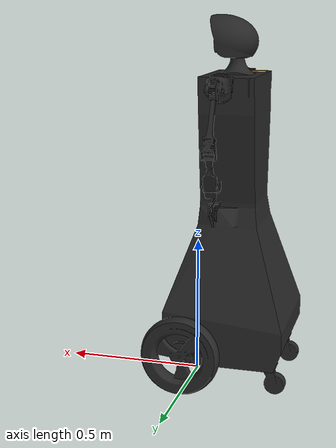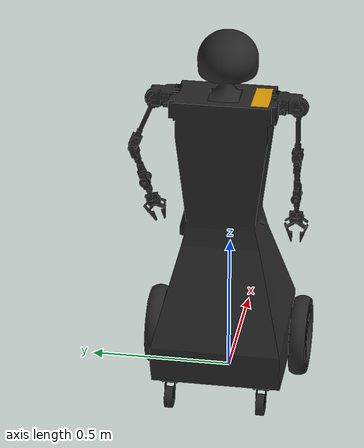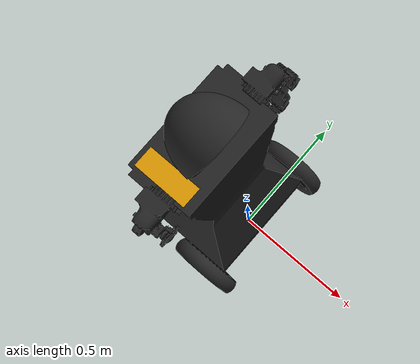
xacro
<?xml version="1.0" ?>
<robot name="roomac" xmlns:xacro="http://www.ros.org/wiki/xacro">

<xacro:arg name="simulation" default="false"/>

<xacro:include filename="$(find roomac_description)/urdf/roomac.trans"/>
<xacro:include filename="$(find roomac_description)/urdf/roomac.gazebo"/>

<material name="black">
  <color rgba="0.15 0.15 0.15 1.0"/>
</material>

<!-- BODY -->

<link name="base_link"/>
<link name="base_footprint"/>

<!-- Additional link needed to solve moveit warning (as far as I know it shouldn't cause any issue as I'm not using KDL, but still better to solve it): -->
<!-- The root link base_link has an inertia specified in the URDF, but KDL does not support a root link with an inertia.  As a workaround, you can add an extra dummy link to your URDF. -->
<link name="robot_body_link">
  <inertial>
    <origin xyz="-0.13821660856078213 0.0043835143674895525 0.42578889973861744" rpy="0 0 0"/>
    <mass value="12.267858710704742"/>
    <inertia ixx="0.720301" iyy="0.677932" izz="0.200987" ixy="4.5e-05" iyz="-0.003874" ixz="0.025748"/>
  </inertial>
  <visual>
    <origin xyz="0 0 0" rpy="0 0 0"/>
    <geometry>
      <mesh filename="package://roomac_description/meshes/robot_body.dae" scale="0.001 0.001 0.001"/>
    </geometry>
    <material name="black"/>
  </visual>
  <collision>
    <origin xyz="0 0 0" rpy="0 0 0"/>
    <geometry>
      <mesh filename="package://roomac_description/meshes/robot_body_collision.stl" scale="0.001 0.00105 0.001"/>
    </geometry>
  </collision>
</link>

<link name="head_link">
  <inertial>
    <origin xyz="-0.057525587412925475 -6.228687900878637e-07 0.06845033639955778" rpy="0 0 0"/>
    <mass value="4.300223439076428"/>
    <inertia ixx="0.025424" iyy="0.022772" izz="0.013755" ixy="0.0" iyz="-0.0" ixz="-0.001476"/>
  </inertial>
  <visual>
    <origin xyz="0.08 -2.1e-05 -0.969145" rpy="0 0 0"/>
    <geometry>
      <mesh filename="package://roomac_description/meshes/head.dae" scale="0.001 0.001 0.001"/>
    </geometry>
    <material name="black"/>
  </visual>
  <collision>
    <origin xyz="0.08 -2.1e-05 -0.969145" rpy="0 0 0"/>
    <geometry>
      <mesh filename="package://roomac_description/meshes/head_collision.stl" scale="0.001 0.001 0.001"/>
    </geometry>
  </collision>
</link>

<joint name="base_joint" type="fixed">
  <origin rpy="0 0 0" xyz="0 0 0.145"/>
  <parent link="base_footprint"/>
  <child link="base_link"/>
</joint>

<joint name="robot_body_joint" type="fixed">
  <parent link="base_link"/>
  <child link="robot_body_link"/>
</joint>

<joint name="head_joint" type="fixed">
  <origin xyz="-0.08 2.1e-05 0.969145" rpy="0 0 0"/>
  <parent link="base_link"/>
  <child link="head_link"/>
</joint>

<!-- KINECT -->

<link name="camera_link"/>
<joint name="kinect_joint" type="fixed">
  <!-- 0.045 comes from calibration - ground was slightly tilted and I calibrated it in rviz to be parallel  -->
  <origin rpy="0 ${(31.513/180.)*pi - 0.045} 0" xyz="-0.108561 0.039543 0.467024"/>
  <parent link="base_link"/>
  <child link="camera_link"/>
</joint>

<!-- IMU -->

<link name="imu_link"/>
<joint name="imu_joint" type="fixed">
  <origin rpy="0 0 0" xyz="-0.09873 -0.0375 0.0305"/>
  <parent link="base_link"/>
  <child link="imu_link"/>
</joint>

<!-- ARTAG -->

<link name="artag_link"/>

<link name="artag_bundle_visual_link">
  <visual>
    <origin rpy="0 0 0" xyz="0 0 0"/>
    <geometry>
      <mesh filename="package://roomac_description/meshes/artag_bundle.dae" scale="1 1 1"/>
    </geometry>
  </visual>
</link>

<link name="artag_bundle_link"/>

<joint name="artag_joint" type="fixed">
  <origin rpy="0 0 0" xyz="-0.149 -0.125 0.972"/>
  <parent link="base_link"/>
  <child link="artag_link"/>
</joint>

<joint name="artag_bundle_visual_joint" type="fixed">
  <origin rpy="0 0 0" xyz="0.01 0.0 0.0"/>
  <parent link="artag_link"/>
  <child link="artag_bundle_visual_link"/>
</joint>

<xacro:if value="$(arg simulation)">
  <xacro:property name="artag_bundle_rpy" value="${-pi/2} 0 ${-pi/2}"/>
  <xacro:property name="artag_bundle_xyz" value="0.04857 0 0"/>
  <xacro:property name="artag_bundle_parent_link" value="artag_bundle_visual_link" />
</xacro:if>
<xacro:unless value="$(arg simulation)">
  <xacro:property name="artag_bundle_rpy" value="0 0 ${pi/2}"/>
  <xacro:property name="artag_bundle_xyz" value="0.0595 -0.004 0"/>
  <xacro:property name="artag_bundle_parent_link" value="artag_link" />
</xacro:unless>

<joint name="artag_bundle_joint" type="fixed">
    <origin rpy="${artag_bundle_rpy}" xyz="${artag_bundle_xyz}"/>
    <parent link="${artag_bundle_parent_link}"/>
    <child link="artag_bundle_link"/>
</joint>

<!-- CASTERS -->

<xacro:property name="caster_wheel_width" value="0.034"/>
<xacro:property name="caster_wheel_radius" value="0.0375"/>

<link name="caster_right_link">
  <inertial>
    <origin xyz="0.00355868425330208 -0.0279262663780577 -0.08858638249680677" rpy="0 0 0"/>
    <mass value="1.0173955553418546"/>
    <inertia ixx="0.000972" iyy="0.001208" izz="0.000477" ixy="-2e-06" iyz="-5e-06" ixz="-0.000233"/>
  </inertial>
  <visual>
    <origin xyz="0.324 -0.187 0.00465" rpy="0 0 0"/>
    <geometry>
      <mesh filename="package://roomac_description/meshes/caster.dae" scale="0.001 0.001 0.001"/>
    </geometry>
    <material name="black"/>
  </visual>
  <collision>
    <origin xyz="-0.001 -0.026 -0.10035" rpy="${pi/2.} 0 0"/>
    <geometry>
      <cylinder length="${caster_wheel_width}" radius="${caster_wheel_radius}"/>
    </geometry>
  </collision>
</link>

<link name="caster_left_link">
  <inertial>
    <origin xyz="0.0035586842533020246 0.02192626637805642 -0.0885863824968092" rpy="0 0 0"/>
    <mass value="1.0173955553418546"/>
    <inertia ixx="0.000972" iyy="0.001208" izz="0.000477" ixy="2e-06" iyz="5e-06" ixz="-0.000233"/>
  </inertial>
  <visual>
    <origin xyz="0.324 -0.139 0.00465" rpy="0 0 0"/>
    <geometry>
      <mesh filename="package://roomac_description/meshes/caster.dae" scale="0.001 0.001 0.001"/>
    </geometry>
    <material name="black"/>
  </visual>
  <collision>
    <origin xyz="-0.001 0.022 -0.10035" rpy="${pi/2.} 0 0"/>
    <geometry>
      <cylinder length="${caster_wheel_width}" radius="${caster_wheel_radius}"/>
    </geometry>
  </collision>
</link>

<joint name="caster_right_joint" type="fixed">
  <origin xyz="-0.324 -0.133 -0.00465" rpy="0 0 0"/>
  <parent link="base_link"/>
  <child link="caster_right_link"/>
</joint>

<joint name="caster_left_joint" type="fixed">
  <origin xyz="-0.324 0.139 -0.00465" rpy="0 0 0"/>
  <parent link="base_link"/>
  <child link="caster_left_link"/>
</joint>

<!-- WHEELS -->

<xacro:property name="wheel_width" value="0.062"/>
<xacro:property name="wheel_radius" value="0.145"/>
<xacro:property name="wheel_body_separation" value="0.01536"/>

<link name="wheel_right_link">
  <inertial>
    <origin xyz="-8.535155939829862e-08 -0.045545810193822645 1.2324269625501287e-07" rpy="0 0 0"/>
    <mass value="2.752514069802561"/>
    <inertia ixx="0.01649" iyy="0.031597" izz="0.01649" ixy="0.0" iyz="-0.0" ixz="0.0"/>
  </inertial>
  <visual>
    <origin xyz="-0.0 0.21064 0.0" rpy="${pi} 0 0"/>
    <geometry>
      <mesh filename="package://roomac_description/meshes/wheel.dae" scale="0.001 0.001 0.001"/>
    </geometry>
    <material name="black"/>
  </visual>
  <collision>
    <origin xyz="0 ${-wheel_width/2. - wheel_body_separation} 0" rpy="${pi/2.} 0 0"/>
    <geometry>
      <cylinder length="${wheel_width}" radius="${wheel_radius}"/>
    </geometry>
  </collision>
</link>

<link name="wheel_left_link">
  <inertial>
    <origin xyz="-7.854137935392783e-08 0.039545809782175645 1.1633993854093376e-07" rpy="0 0 0"/>
    <mass value="2.7525139105402956"/>
    <inertia ixx="0.01649" iyy="0.031597" izz="0.01649" ixy="-0.0" iyz="0.0" ixz="0.0"/>
  </inertial>
  <visual>
    <origin xyz="0.0 -0.21064 0.0" rpy="0 0 0"/>
    <geometry>
      <mesh filename="package://roomac_description/meshes/wheel.dae" scale="0.001 0.001 0.001"/>
    </geometry>
    <material name="black"/>
  </visual>
  <collision>
    <origin xyz="0 ${wheel_width/2. + wheel_body_separation} 0" rpy="${pi/2.} 0 0"/>
    <geometry>
      <cylinder length="${wheel_width}" radius="${wheel_radius}"/>
    </geometry>
  </collision>
</link>

<joint name="wheel_right_joint" type="continuous">
  <origin xyz="0.0 -0.21064 0.0" rpy="0 0 0"/>
  <parent link="base_link"/>
  <child link="wheel_right_link"/>
  <axis xyz="0 1 0"/>
</joint>

<joint name="wheel_left_joint" type="continuous">
  <origin xyz="0.0 0.21064 0.0" rpy="0 0 0"/>
  <parent link="base_link"/>
  <child link="wheel_left_link"/>
  <axis xyz="0 1 0"/>
</joint>

<!-- RIGHT ARM -->

<link name="shoulder_right_link">
  <inertial>
    <origin xyz="-0.00456057320555428 -0.012787272244286635 0.0077144845604640855" rpy="0 0 0"/>
    <mass value="2.3807768899181916"/>
    <inertia ixx="0.00282" iyy="0.002455" izz="0.003055" ixy="-0.000114" iyz="0.000293" ixz="7.6e-05"/>
  </inertial>
  <visual>
    <origin xyz="0.1135 0.174979 -0.9345" rpy="0 0 0"/>
    <geometry>
      <mesh filename="package://roomac_description/meshes/shoulder_right.dae" scale="0.001 0.001 0.001"/>
    </geometry>
    <material name="black"/>
  </visual>
  <collision>
    <origin xyz="0.1135 0.174979 -0.9345" rpy="0 0 0"/>
    <geometry>
      <mesh filename="package://roomac_description/meshes/shoulder_right_collision.stl" scale="0.001 0.001 0.001"/>
    </geometry>
  </collision>
</link>

<link name="shoulder_elbow_right_link">
  <inertial>
    <origin xyz="-1.8144588477334023e-05 1.4016989058340812e-07 -0.08491558495824947" rpy="0 0 0"/>
    <mass value="1.0007451414955084"/>
    <inertia ixx="0.008299" iyy="0.0082" izz="0.000235" ixy="-0.0" iyz="0.0" ixz="3e-06"/>
  </inertial>
  <visual>
    <origin xyz="0.113 0.243979 -0.9345" rpy="0 0 0"/>
    <geometry>
      <mesh filename="package://roomac_description/meshes/shoulder_elbow_right.dae" scale="0.001 0.001 0.001"/>
    </geometry>
    <material name="black"/>
  </visual>
  <collision>
    <origin xyz="0.113 0.243979 -0.9345" rpy="0 0 0"/>
    <geometry>
      <mesh filename="package://roomac_description/meshes/shoulder_elbow_right_collision.stl" scale="0.001 0.001 0.001"/>
    </geometry>
  </collision>
</link>

<link name="elbow_wrist_right_link">
  <inertial>
    <origin xyz="-0.019371175261057735 -0.001202599027629786 -0.0924289033208664" rpy="0 0 0"/>
    <mass value="0.6102002908923237"/>
    <inertia ixx="0.00103" iyy="0.001092" izz="0.000114" ixy="0.0" iyz="-1.8e-05" ixz="-1e-05"/>
  </inertial>
  <visual>
    <origin xyz="0.0925 0.243979 -0.733425" rpy="0 0 0"/>
    <geometry>
      <mesh filename="package://roomac_description/meshes/elbow_wrist_right.dae" scale="0.001 0.001 0.001"/>
    </geometry>
    <material name="black"/>
  </visual>
  <collision>
    <origin xyz="0.0925 0.243979 -0.733425" rpy="0 0 0"/>
    <geometry>
      <mesh filename="package://roomac_description/meshes/elbow_wrist_right_collision.stl" scale="0.001 0.001 0.001"/>
    </geometry>
  </collision>
</link>

<link name="wrist_right_link">
  <inertial>
    <origin xyz="0.02427263159088841 -0.0008946909470901598 -0.023520404043236964" rpy="0 0 0"/>
    <mass value="0.15933052176631626"/>
    <inertia ixx="6.4e-05" iyy="0.000118" izz="6.6e-05" ixy="0.0" iyz="-2e-06" ixz="1.5e-05"/>
  </inertial>
  <visual>
    <origin xyz="0.139354 0.243979 -0.603583" rpy="0 0 0"/>
    <geometry>
      <mesh filename="package://roomac_description/meshes/wrist_right.dae" scale="0.001 0.001 0.001"/>
    </geometry>
    <material name="black"/>
  </visual>
  <collision>
    <origin xyz="0.139354 0.243979 -0.603583" rpy="0 0 0"/>
    <geometry>
      <mesh filename="package://roomac_description/meshes/wrist_right_collision.stl" scale="0.001 0.001 0.001"/>
    </geometry>
  </collision>
</link>

<link name="gripper_right_link">
  <inertial>
    <origin xyz="-0.00024163561260406863 0.0010341725235240573 -0.024005848417666398" rpy="0 0 0"/>
    <mass value="0.20788263258389922"/>
    <inertia ixx="8.7e-05" iyy="5.3e-05" izz="5.8e-05" ixy="4e-06" iyz="-1e-06" ixz="3e-06"/>
  </inertial>
  <visual>
    <origin xyz="0.114635 0.244052 -0.544791" rpy="0 0 0"/>
    <geometry>
      <mesh filename="package://roomac_description/meshes/gripper_right.dae" scale="0.001 0.001 0.001"/>
    </geometry>
    <material name="black"/>
  </visual>
  <collision>
    <origin xyz="0.114635 0.244052 -0.544791" rpy="0 0 0"/>
    <geometry>
      <mesh filename="package://roomac_description/meshes/gripper_right_collision.stl" scale="0.001 0.001 0.001"/>
    </geometry>
  </collision>
</link>

<!-- Point approximately in the middle between fingers, used as a position for gripping objects
  (in inverse kinematics this point should match objects position) -->
<link name="gripping_right_link"/>

<link name="gripper_finger_r_right_link">
  <inertial>
    <origin xyz="0.004500248654851852 0.005686730528388695 -0.011016022246636392" rpy="0 0 0"/>
    <mass value="0.03746064390067365"/>
    <inertia ixx="1.2e-05" iyy="1e-05" izz="2e-06" ixy="-0.0" iyz="4e-06" ixz="-0.0"/>
  </inertial>
  <visual>
    <origin xyz="0.117385 0.274314 -0.487684" rpy="0 0 0"/>
    <geometry>
      <mesh filename="package://roomac_description/meshes/gripper_finger_r_right.dae" scale="0.001 0.001 0.001"/>
    </geometry>
    <material name="black"/>
  </visual>
  <collision>
    <origin xyz="0.117385 0.274314 -0.487684" rpy="0 0 0"/>
    <geometry>
      <mesh filename="package://roomac_description/meshes/gripper_finger_r_right_collision.stl" scale="0.001 0.001 0.001"/>
    </geometry>
  </collision>
</link>

<link name="gripper_finger_l_right_link">
  <inertial>
    <origin xyz="0.0045002486085409105 -0.005494466341388893 -0.01111360012887036" rpy="0 0 0"/>
    <mass value="0.037460643900623564"/>
    <inertia ixx="1.2e-05" iyy="1e-05" izz="2e-06" ixy="-0.0" iyz="-4e-06" ixz="-0.0"/>
  </inertial>
  <visual>
    <origin xyz="0.117385 0.214585 -0.487684" rpy="0 0 0"/>
    <geometry>
      <mesh filename="package://roomac_description/meshes/gripper_finger_l_right.dae" scale="0.001 0.001 0.001"/>
    </geometry>
    <material name="black"/>
  </visual>
  <collision>
    <origin xyz="0.117385 0.214585 -0.487684" rpy="0 0 0"/>
    <geometry>
      <mesh filename="package://roomac_description/meshes/gripper_finger_l_right_collision.stl" scale="0.001 0.001 0.001"/>
    </geometry>
  </collision>
</link>

<!-- Values for effort and velocity are from example (they are required)
  not sure if correct, may need to change them -->
<joint name="shoulder_pitch_right_joint" type="revolute">
  <origin xyz="-0.1135 -0.174979 0.9345" rpy="0 0 0"/>
  <parent link="base_link"/>
  <child link="shoulder_right_link"/>
  <axis xyz="0 1 0"/>
  <limit effort="30" velocity="1.0" lower="-2.390" upper="0.489"/>
</joint>

<joint name="shoulder_roll_right_joint" type="revolute">
  <origin xyz="0.0005 -0.069 0.0" rpy="0 0 0"/>
  <parent link="shoulder_right_link"/>
  <child link="shoulder_elbow_right_link"/>
  <axis xyz="-1 0 0"/>
  <!-- Calculated lower: -0.899, adjusted it due to colision with gear-->
  <limit effort="30" velocity="1.0" lower="-0.800" upper="1.979"/>
</joint>

<joint name="elbow_right_joint" type="revolute">
  <origin xyz="0.0205 0.0 -0.201075" rpy="0.0 0 0"/>
  <parent link="shoulder_elbow_right_link"/>
  <child link="elbow_wrist_right_link"/>
  <axis xyz="1 0 0"/>
  <!-- Calculated lower: -2.879 upper: 2.879, adjusted due to collisions-->
  <!-- Safe values, might be some room for increase -->
  <limit effort="30" velocity="1.0" lower="-2.1" upper="2.1"/>
</joint>

<joint name="wrist_right_joint" type="revolute">
  <origin xyz="-0.046854 0.0 -0.129842" rpy="0 0 0"/>
  <parent link="elbow_wrist_right_link"/>
  <child link="wrist_right_link"/>
  <axis xyz="-1 0 0"/>
  <limit effort="30" velocity="1.0" lower="-1.994" upper="1.146"/>
</joint>

<joint name="gripper_twist_right_joint" type="revolute">
  <origin xyz="0.024719 -7.3e-05 -0.058792" rpy="0 0 0"/>
  <parent link="wrist_right_link"/>
  <child link="gripper_right_link"/>
  <axis xyz="0 0 -1"/>
  <limit effort="30" velocity="1.0" lower="-1.570" upper="1.570"/>
</joint>

<joint name="gripper_finger_r_right_joint" type="prismatic">
  <origin xyz="-0.00275 -0.030262 -0.071" rpy="0 0 0"/>
  <parent link="gripper_right_link"/>
  <child link="gripper_finger_r_right_link"/>
  <axis xyz="0 1 0"/>
  <limit effort="100" velocity="100" lower="-0.0045" upper="0.013"/>
  <mimic joint="gripper_finger_l_right_joint" multiplier="-1" offset="0" />
</joint>

<joint name="gripper_finger_l_right_joint" type="prismatic">
  <origin xyz="-0.00275 0.029467 -0.071" rpy="0 0 0"/>
  <parent link="gripper_right_link"/>
  <child link="gripper_finger_l_right_link"/>
  <axis xyz="0 1 0"/>
  <limit effort="100" velocity="100" lower="-0.013" upper="0.0045"/>
</joint>

<joint name="right_gripping_joint" type="fixed">
  <origin rpy="0 0 0" xyz="0.0 0.0 -0.1"/>
  <parent link="gripper_right_link"/>
  <child link="gripping_right_link"/>
</joint>

<!-- LEFT ARM -->

<link name="shoulder_left_link">
  <inertial>
    <origin xyz="-0.004560577392501555 0.012787335699410651 0.007714466394341812" rpy="0 0 0"/>
    <mass value="2.380776527200545"/>
    <inertia ixx="0.00282" iyy="0.002455" izz="0.003055" ixy="0.000114" iyz="-0.000293" ixz="7.6e-05"/>
  </inertial>
  <visual>
    <origin xyz="0.1135 -0.175021 -0.9345" rpy="0 0 0"/>
    <geometry>
      <mesh filename="package://roomac_description/meshes/shoulder_left.dae" scale="0.001 0.001 0.001"/>
    </geometry>
    <material name="black"/>
  </visual>
  <collision>
    <origin xyz="0.1135 -0.175021 -0.9345" rpy="0 0 0"/>
    <geometry>
      <mesh filename="package://roomac_description/meshes/shoulder_left_collision.stl" scale="0.001 0.001 0.001"/>
    </geometry>
  </collision>
</link>

<link name="shoulder_elbow_left_link">
  <inertial>
    <origin xyz="-1.814433713719088e-05 -6.981540309758394e-08 -0.08491558344283501" rpy="0 0 0"/>
    <mass value="1.000745128308775"/>
    <inertia ixx="0.008299" iyy="0.0082" izz="0.000235" ixy="0.0" iyz="-0.0" ixz="3e-06"/>
  </inertial>
  <visual>
    <origin xyz="0.113 -0.244021 -0.9345" rpy="0 0 0"/>
    <geometry>
      <mesh filename="package://roomac_description/meshes/shoulder_elbow_left.dae" scale="0.001 0.001 0.001"/>
    </geometry>
    <material name="black"/>
  </visual>
  <collision>
    <origin xyz="0.113 -0.244021 -0.9345" rpy="0 0 0"/>
    <geometry>
      <mesh filename="package://roomac_description/meshes/shoulder_elbow_left_collision.stl" scale="0.001 0.001 0.001"/>
    </geometry>
  </collision>
</link>

<link name="elbow_wrist_left_link">
  <inertial>
    <origin xyz="-0.019371169403424968 0.0012026708698118505 -0.09242900740153548" rpy="0 0 0"/>
    <mass value="0.610199848603108"/>
    <inertia ixx="0.00103" iyy="0.001092" izz="0.000114" ixy="-0.0" iyz="1.8e-05" ixz="-1e-05"/>
  </inertial>
  <visual>
    <origin xyz="0.0925 -0.244021 -0.733443" rpy="0 0 0"/>
    <geometry>
      <mesh filename="package://roomac_description/meshes/elbow_wrist_left.dae" scale="0.001 0.001 0.001"/>
    </geometry>
    <material name="black"/>
  </visual>
  <collision>
    <origin xyz="0.0925 -0.244021 -0.733443" rpy="0 0 0"/>
    <geometry>
      <mesh filename="package://roomac_description/meshes/elbow_wrist_left_collision.stl" scale="0.001 0.001 0.001"/>
    </geometry>
  </collision>
</link>

<link name="wrist_left_link">
  <inertial>
    <origin xyz="0.02427263159088741 0.000894761301925201 -0.023520440865037795" rpy="0 0 0"/>
    <mass value="0.15933052176634832"/>
    <inertia ixx="6.4e-05" iyy="0.000118" izz="6.6e-05" ixy="-0.0" iyz="2e-06" ixz="1.5e-05"/>
  </inertial>
  <visual>
    <origin xyz="0.139354 -0.244021 -0.603601" rpy="0 0 0"/>
    <geometry>
      <mesh filename="package://roomac_description/meshes/wrist_left.dae" scale="0.001 0.001 0.001"/>
    </geometry>
    <material name="black"/>
  </visual>
  <collision>
    <origin xyz="0.139354 -0.244021 -0.603601" rpy="0 0 0"/>
    <geometry>
      <mesh filename="package://roomac_description/meshes/wrist_left_collision.stl" scale="0.001 0.001 0.001"/>
    </geometry>
  </collision>
</link>

<link name="gripper_left_link">
  <inertial>
    <origin xyz="-0.0002416356126049013 -0.0010341021686912366 -0.0240058852394609" rpy="0 0 0"/>
    <mass value="0.20788263258393214"/>
    <inertia ixx="8.7e-05" iyy="5.3e-05" izz="5.8e-05" ixy="-4e-06" iyz="1e-06" ixz="3e-06"/>
  </inertial>
  <visual>
    <origin xyz="0.114635 -0.244094 -0.544809" rpy="0 0 0"/>
    <geometry>
      <mesh filename="package://roomac_description/meshes/gripper_left.dae" scale="0.001 0.001 0.001"/>
    </geometry>
    <material name="black"/>
  </visual>
  <collision>
    <origin xyz="0.114635 -0.244094 -0.544809" rpy="0 0 0"/>
    <geometry>
      <mesh filename="package://roomac_description/meshes/gripper_left_collision.stl" scale="0.001 0.001 0.001"/>
    </geometry>
  </collision>
</link>

<link name="gripper_finger_l_left_link">
  <inertial>
    <origin xyz="0.004500248654850533 -0.005687660173556985 -0.011016059068434336" rpy="0 0 0"/>
    <mass value="0.03746064390066084"/>
    <inertia ixx="1.2e-05" iyy="1e-05" izz="2e-06" ixy="0.0" iyz="-4e-06" ixz="-0.0"/>
  </inertial>
  <visual>
    <origin xyz="0.117385 -0.274357 -0.487702" rpy="0 0 0"/>
    <geometry>
      <mesh filename="package://roomac_description/meshes/gripper_finger_l_left.dae" scale="0.001 0.001 0.001"/>
    </geometry>
    <material name="black"/>
  </visual>
  <collision>
    <origin xyz="0.117385 -0.274357 -0.487702" rpy="0 0 0"/>
    <geometry>
      <mesh filename="package://roomac_description/meshes/gripper_finger_l_left_collision.stl" scale="0.001 0.001 0.001"/>
    </geometry>
  </collision>
</link>

<link name="gripper_finger_r_left_link">
  <inertial>
    <origin xyz="0.0045002486085398 0.0054945366962241005 -0.011113636950655759" rpy="0 0 0"/>
    <mass value="0.03746064390060757"/>
    <inertia ixx="1.2e-05" iyy="1e-05" izz="2e-06" ixy="0.0" iyz="4e-06" ixz="-0.0"/>
  </inertial>
  <visual>
    <origin xyz="0.117385 -0.214627 -0.487702" rpy="0 0 0"/>
    <geometry>
      <mesh filename="package://roomac_description/meshes/gripper_finger_r_left.dae" scale="0.001 0.001 0.001"/>
    </geometry>
    <material name="black"/>
  </visual>
  <collision>
    <origin xyz="0.117385 -0.214627 -0.487702" rpy="0 0 0"/>
    <geometry>
      <mesh filename="package://roomac_description/meshes/gripper_finger_r_left_collision.stl" scale="0.001 0.001 0.001"/>
    </geometry>
  </collision>
</link>

<joint name="shoulder_pitch_left_joint" type="fixed">
  <origin xyz="-0.1135 0.175021 0.9345" rpy="0 0 0"/>
  <parent link="base_link"/>
  <child link="shoulder_left_link"/>
  <axis xyz="0 1 0"/>
</joint>

<joint name="shoulder_roll_left_joint" type="fixed">
  <origin xyz="0.0005 0.069 0.0" rpy="0.4 0 0"/>
  <parent link="shoulder_left_link"/>
  <child link="shoulder_elbow_left_link"/>
  <axis xyz="1 0 0"/>
</joint>

<joint name="elbow_left_joint" type="fixed">
  <origin xyz="0.0205 0.0 -0.201057" rpy="-0.74 0 0"/>
  <parent link="shoulder_elbow_left_link"/>
  <child link="elbow_wrist_left_link"/>
  <axis xyz="1 0 0"/>
</joint>

<joint name="wrist_left_joint" type="fixed">
  <origin xyz="-0.046854 0.0 -0.129842" rpy="0 0 0"/>
  <parent link="elbow_wrist_left_link"/>
  <child link="wrist_left_link"/>
  <axis xyz="1 0 0"/>
</joint>

<joint name="gripper_twist_left_joint" type="fixed">
  <origin xyz="0.024719 7.3e-05 -0.058792" rpy="0 0 0"/>
  <parent link="wrist_left_link"/>
  <child link="gripper_left_link"/>
  <axis xyz="0 0 -1"/>
</joint>

<joint name="gripper_finger_r_left_joint" type="fixed">
  <origin xyz="-0.00275 -0.029467 -0.057107" rpy="0 0 0"/>
  <parent link="gripper_left_link"/>
  <child link="gripper_finger_r_left_link"/>
</joint>

<joint name="gripper_finger_l_left_joint" type="fixed">
  <origin xyz="-0.00275 0.030263 -0.057107" rpy="0 0 0"/>
  <parent link="gripper_left_link"/>
  <child link="gripper_finger_l_left_link"/>
</joint>

</robot>

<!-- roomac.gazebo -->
<robot name="roomac" xmlns:xacro="http://www.ros.org/wiki/xacro" >

<xacro:property name="standard_friction" value="1.0" />
<!-- 0 value for caster friction makes simulation run faster -->
<xacro:property name="caster_friction" value="0.0" />
<xacro:property name="wheel_friction" value="100.0" />
<xacro:property name="finger_friction" value="100.0" />

<gazebo reference="robot_body_link">
  <mu1>${standard_friction}</mu1>
  <mu2>${standard_friction}</mu2>
  <selfCollide>true</selfCollide>
</gazebo>

<gazebo reference="head_link">
  <mu1>${standard_friction}</mu1>
  <mu2>${standard_friction}</mu2>
  <selfCollide>true</selfCollide>
</gazebo>

<!-- WHEELS -->

<gazebo reference="caster_right_link">
  <mu1>${caster_friction}</mu1>
  <mu2>${caster_friction}</mu2>
  <selfCollide>true</selfCollide>
</gazebo>

<gazebo reference="caster_left_link">
  <mu1>${caster_friction}</mu1>
  <mu2>${caster_friction}</mu2>
  <selfCollide>true</selfCollide>
</gazebo>

<gazebo reference="wheel_right_link">
  <mu1>${wheel_friction}</mu1>
  <mu2>${wheel_friction}</mu2>
  <selfCollide>true</selfCollide>
</gazebo>

<gazebo reference="wheel_left_link">
  <mu1>${wheel_friction}</mu1>
  <mu2>${wheel_friction}</mu2>
  <selfCollide>true</selfCollide>
</gazebo>

<!-- RIGHT ARM -->

<gazebo reference="shoulder_right_link">
  <mu1>${standard_friction}</mu1>
  <mu2>${standard_friction}</mu2>
  <selfCollide>true</selfCollide>
</gazebo>

<gazebo reference="shoulder_elbow_right_link">
  <mu1>${standard_friction}</mu1>
  <mu2>${standard_friction}</mu2>
  <selfCollide>true</selfCollide>
</gazebo>

<gazebo reference="elbow_wrist_right_link">
  <mu1>${standard_friction}</mu1>
  <mu2>${standard_friction}</mu2>
  <selfCollide>true</selfCollide>
</gazebo>

<gazebo reference="wrist_right_link">
  <mu1>${standard_friction}</mu1>
  <mu2>${standard_friction}</mu2>
  <selfCollide>true</selfCollide>
</gazebo>

<gazebo reference="gripper_right_link">
  <mu1>${standard_friction}</mu1>
  <mu2>${standard_friction}</mu2>
  <selfCollide>true</selfCollide>
</gazebo>

<gazebo reference="gripper_finger_r_right_link">
  <mu1>${finger_friction}</mu1>
  <mu2>${finger_friction}</mu2>
  <selfCollide>true</selfCollide>
</gazebo>

<gazebo reference="gripper_finger_l_right_link">
  <mu1>${finger_friction}</mu1>
  <mu2>${finger_friction}</mu2>
  <selfCollide>true</selfCollide>
</gazebo>

<!-- ARM LEFT -->

<gazebo reference="shoulder_left_link">
  <mu1>${standard_friction}</mu1>
  <mu2>${standard_friction}</mu2>
  <selfCollide>true</selfCollide>
</gazebo>

<gazebo reference="shoulder_elbow_left_link">
  <mu1>${standard_friction}</mu1>
  <mu2>${standard_friction}</mu2>
  <selfCollide>true</selfCollide>
</gazebo>

<gazebo reference="elbow_wrist_left_link">
  <mu1>${standard_friction}</mu1>
  <mu2>${standard_friction}</mu2>
  <selfCollide>true</selfCollide>
</gazebo>

<gazebo reference="wrist_left_link">
  <mu1>${standard_friction}</mu1>
  <mu2>${standard_friction}</mu2>
  <selfCollide>true</selfCollide>
</gazebo>

<gazebo reference="gripper_left_link">
  <mu1>${standard_friction}</mu1>
  <mu2>${standard_friction}</mu2>
  <selfCollide>true</selfCollide>
</gazebo>

<gazebo reference="gripper_finger_r_left_link">
  <mu1>${finger_friction}</mu1>
  <mu2>${finger_friction}</mu2>
  <selfCollide>true</selfCollide>
</gazebo>

<gazebo reference="gripper_finger_l_left_link">
  <mu1>${finger_friction}</mu1>
  <mu2>${finger_friction}</mu2>
  <selfCollide>true</selfCollide>
</gazebo>

<!-- Pointcloud in gazebo is published in different coordinates than in reality, real frame has to be rotated -->
<joint name="gazebo_kinect_joint" type="fixed">
		<origin rpy="${-pi/2} 0 ${-pi/2}" xyz="0 0 0"/>
		<parent link="camera_link"/>
		<child link="gazebo_camera_link"/>
</joint>
<link name="gazebo_camera_link" />

<xacro:property name="camera_name" value="camera" />
<xacro:property name="frame_name" value="gazebo_camera_link" />

<gazebo reference="camera_link">
  <sensor name="camera_plugin" type="depth">
    <update_rate>10.0</update_rate>
    <camera>
      <horizontal_fov>1.047198</horizontal_fov>
      <image>
        <width>640</width>
        <height>480</height>
        <format>R8G8B8</format>
      </image>
      <clip>
        <near>0.05</near>
        <far>3</far>
      </clip>
    </camera>
    <plugin name="camera_controller" filename="libgazebo_ros_openni_kinect.so">
      <baseline>0.2</baseline>
      <alwaysOn>true</alwaysOn>
      <updateRate>10.0</updateRate>
      <cameraName>${camera_name}_ir</cameraName>
      <imageTopicName>/${camera_name}/color/image_raw</imageTopicName>
      <cameraInfoTopicName>/${camera_name}/color/camera_info</cameraInfoTopicName>
      <depthImageTopicName>/${camera_name}/depth/image_raw</depthImageTopicName>
      <depthImageInfoTopicName>/${camera_name}/depth_registered/camera_info</depthImageInfoTopicName>
      <pointCloudTopicName>/${camera_name}/depth_registered/points</pointCloudTopicName>
      <frameName>${frame_name}</frameName>
      <pointCloudCutoff>0.5</pointCloudCutoff>
      <pointCloudCutoffMax>3.0</pointCloudCutoffMax>
      <distortionK1>0.00000001</distortionK1>
      <distortionK2>0.00000001</distortionK2>
      <distortionK3>0.00000001</distortionK3>
      <distortionT1>0.00000001</distortionT1>
      <distortionT2>0.00000001</distortionT2>
      <CxPrime>0</CxPrime>
      <Cx>0</Cx>
      <Cy>0</Cy>
      <focalLength>0</focalLength>
      <hackBaseline>0</hackBaseline>
      <robotNamespace>/</robotNamespace>
    </plugin>
  </sensor>
</gazebo>

<gazebo>
  <plugin name="differential_drive_controller" filename="libgazebo_ros_diff_drive.so">
    <updateRate>10</updateRate>
    <!-- Name of left joint, defaults to `left_joint` -->
    <leftJoint>wheel_left_joint</leftJoint>
    <!-- Name of right joint, defaults to `right_joint` -->
    <rightJoint>wheel_right_joint</rightJoint>
    <!-- The distance from the center of one wheel to the other, in meters, defaults to 0.34 m -->
    <wheelSeparation>0.507</wheelSeparation>
    <!-- Diameter of the wheels, in meters, defaults to 0.15 m -->
    <wheelDiameter>0.29</wheelDiameter>
    <!-- Wheel acceleration, in rad/s^2, defaults to 0.0 rad/s^2 -->
    <wheelAcceleration>0.5</wheelAcceleration>
    <!-- Maximum torque which the wheels can produce, in Nm, defaults to 5 Nm -->
    <wheelTorque>20</wheelTorque>
    <!-- Topic to receive geometry_msgs/Twist message commands, defaults to `cmd_vel` -->
    <commandTopic>cmd_vel</commandTopic>
    <!-- Topic to publish nav_msgs/Odometry messages, defaults to `odom` -->
    <odometryTopic>/wheel_odom/odom</odometryTopic>
    <!-- Odometry frame, defaults to `odom` -->
    <odometryFrame>odom</odometryFrame>
    <!-- Robot frame to calculate odometry from, defaults to `base_footprint` -->
    <robotBaseFrame>base_link</robotBaseFrame>
    <!-- Odometry source, 0 for ENCODER, 1 for WORLD, defaults to WORLD, Not really correct, for setting one I got warning -->
    <odometrySource>world</odometrySource>
    <!-- Set to true to publish transforms for the wheel links, defaults to false -->
    <publishWheelTF>true</publishWheelTF>
    <!-- Set to true to publish transforms for the odometry, defaults to true -->
    <publishOdom>true</publishOdom>
    <!-- Set to true to publish sensor_msgs/JointState on /joint_states for the wheel joints, defaults to false -->
    <publishWheelJointState>true</publishWheelJointState>
    <!-- Set to true to swap right and left wheels, defaults to true -->
    <legacyMode>false</legacyMode>

    <rosDebugLevel>na</rosDebugLevel>
    <publishOdomTF>false</publishOdomTF>
    <publishTf>true</publishTf>
  </plugin>
</gazebo>

<gazebo reference="imu_link">
  <gravity>true</gravity>
  <sensor name="imu_sensor" type="imu">
    <always_on>true</always_on>
    <update_rate>10</update_rate>
    <visualize>true</visualize>
    <topic>__default_topic__</topic>
    <plugin filename="libgazebo_ros_imu_sensor.so" name="imu_plugin">
      <topicName>/imu/orientation</topicName>
      <bodyName>imu_link</bodyName>
      <updateRateHZ>10.0</updateRateHZ>
      <gaussianNoise>0.0</gaussianNoise>
      <xyzOffset>0 0 0</xyzOffset>
      <rpyOffset>0 0 0</rpyOffset>
      <frameName>imu_link</frameName>
      <initialOrientationAsReference>false</initialOrientationAsReference>
    </plugin>
    <pose>0 0 0 0 0 0</pose>
  </sensor>
</gazebo>

<!-- plugin from https://github.com/JenniferBuehler/gazebo-pkgs -->
<gazebo>
   <plugin name="gazebo_grasp_fix" filename="libgazebo_grasp_fix.so">
        <arm>
           <arm_name>right_arm</arm_name>
           <palm_link> gripper_right_link  </palm_link>
           <gripper_link> gripper_finger_r_right_link </gripper_link>
           <gripper_link> gripper_finger_l_right_link </gripper_link>
        </arm>
       <forces_angle_tolerance>100</forces_angle_tolerance>
       <update_rate>16</update_rate>
       <grip_count_threshold>4</grip_count_threshold>
       <max_grip_count>8</max_grip_count>
       <release_tolerance>0.005</release_tolerance>
       <disable_collisions_on_attach>false</disable_collisions_on_attach>
       <contact_topic>__default_topic__</contact_topic>
    </plugin>
</gazebo>

<gazebo>
  <plugin name="gripper_finger_r_right_joint_mimic_joint_plugin" filename="libroboticsgroup_upatras_gazebo_mimic_joint_plugin.so">
    <joint>gripper_finger_l_right_joint</joint>
    <mimicJoint>gripper_finger_r_right_joint</mimicJoint>
    <multiplier>-1.0</multiplier>
    <offset>0.0</offset>
    <sensitiveness>0.0</sensitiveness> <!-- A double specifying the sensitiveness of the mimic joint. Defaults to 0.0. It basically is the threshold of the difference between the 2 angles (joint's and mimic's) before applying the "mimicness". -->
    <robotNamespace>/roomac</robotNamespace>
  </plugin>
</gazebo>

<gazebo>
  <plugin filename="libgazebo_ros_control.so" name="control">
    <robotNamespace>/roomac</robotNamespace>
  </plugin>
</gazebo>

</robot>
